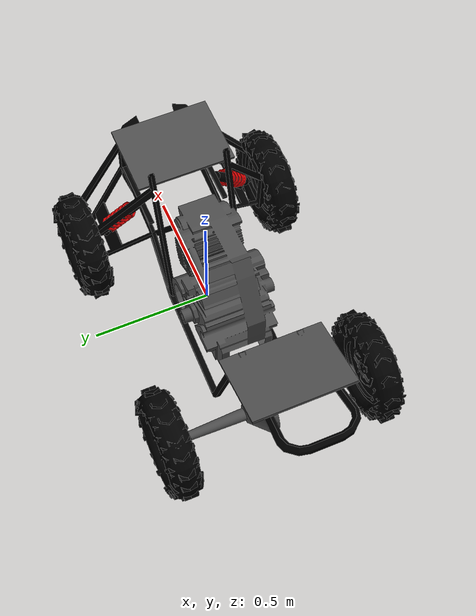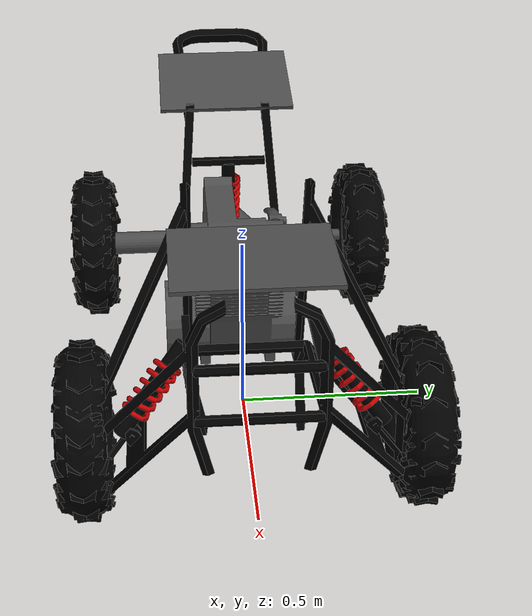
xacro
<?xml version="1.0"?>
<robot name="kymco_maxxer90" xmlns:xacro="http://ros.org/wiki/xacro">

    <xacro:include filename="$(find kymco_maxxer90_description)/urdf/wheel.urdf.xacro"/>
    <xacro:include filename="$(find kymco_maxxer90_description)/urdf/front_wheel.urdf.xacro"/>

    <xacro:property name="PI" value="3.1415926535897931"/>
    <xacro:property name="distance_from_ground" value="0.35"/> <!-- TODO -->
    <xacro:property name="wheelbase" value="0.970"/>
    <xacro:property name="wheel_diameter" value="0.4572"/>
    <xacro:property name="wheel_width" value="0.15"/>
    <xacro:property name="track" value="0.835"/>

    <!-- Chassis -->
    <link name="base_link" />

    <link name="chassis_link">
        <inertial>
            <mass value="68"/>
            <origin xyz="-0.25 0 ${distance_from_ground}" rpy="0 0 0"/>
            <inertia  ixx="6.997767154121414" ixy="0" ixz="0" iyy="17.876069102859596" iyz="0" izz="18.49883625698101" />
        </inertial>
        <visual>
            <origin xyz="0 0 ${distance_from_ground}" rpy="0 0 0"/>
            <geometry>
                <mesh filename="package://kymco_maxxer90_description/meshes/chassis.stl" scale="1.0 1.0 1.0"/>
            </geometry>
            <material name="black">
                <color rgba="0 0 0 1"/>
            </material>
        </visual>
        <collision>
            <origin xyz="0 0 ${distance_from_ground}" rpy="0 0 0"/>
            <geometry>
                <mesh filename="package://kymco_maxxer90_description/meshes/chassis.stl" scale="1.0 1.0 1.0"/>
            </geometry>
        </collision>
    </link>

    <joint name="chassis_joint" type="fixed">
        <origin xyz="0 0 0" rpy="0 0 0" />
        <parent link="base_link" />"
        <child link="chassis_link" />"
    </joint>

    <gazebo reference="chassis_link">
        <material>Gazebo/Black</material>
    </gazebo>"

    <!-- Steering wheel -->
    <link name="steering_wheel_link">
        <inertial>
            <mass value="5"/>
            <origin xyz="0 0 0"/>
            <inertia ixx="0.01" ixy="0" ixz="0" iyy="0.01" iyz="0" izz="0.01"/>
        </inertial>
    </link>

    <joint name="steering_wheel_joint" type="revolute">
        <origin xyz="-0.3 0 0.8" rpy="0 0 0" />
        <parent link="base_link" />
        <child link="steering_wheel_link" />
        <axis xyz="0 0 1" />
        <limit lower="${-PI*25/180}" upper="${PI*25/180}" effort="100000" velocity="0.95"/>
        <dynamics damping="10" friction="0.3" />
    </joint>

    <transmission name="steering_wheel_joint_trans">
        <type>transmission_interface/SimpleTransmission</type>
        <joint name="steering_wheel_joint">
            <hardwareInterface>hardware_interface/PositionJointInterface</hardwareInterface>
        </joint>
        <actuator name="steering_wheel_actuator">
            <mechanicalReduction>1</mechanicalReduction>
        </actuator>
    </transmission>

    <!-- Engine -->
    <link name="engine_link">
        <visual>
            <origin xyz="0 0 0" rpy="0 0 0"/>
            <geometry>
                <mesh filename="package://kymco_maxxer90_description/meshes/engine.stl" scale="1.3 1.3 1.3"/>
            </geometry>
            <material name="silver">
                <color rgba="0.3 0.3 0.3 1"/>
            </material>
        </visual>
        <collision>
            <origin xyz="0 0 0" rpy="0 0 0"/>
            <geometry>
                <mesh filename="package://kymco_maxxer90_description/meshes/engine.stl" scale="1.3 1.3 1.3"/>
            </geometry>
        </collision>
    </link>

    <joint name="engine_joint" type="fixed">
        <origin xyz="-0.08 0 ${distance_from_ground+0.05}" rpy="0 0 0"/>
        <parent link="base_link" />
        <child link="engine_link" />
    </joint>

    <gazebo reference="engine_link">
        <material>Gazebo/Grey</material>
    </gazebo>"

    <!-- Wheels -->
    <xacro:kymco_maxxer90_front_wheel wheel_prefix="front_right">
        <origin xyz="0.33 ${track/2} ${distance_from_ground/2}" rpy="0 0 ${PI}"/>
    </xacro:kymco_maxxer90_front_wheel>

    <xacro:kymco_maxxer90_front_wheel wheel_prefix="front_left">
        <origin xyz="0.33 ${-track/2} ${distance_from_ground/2}" rpy="0 0 0"/>
    </xacro:kymco_maxxer90_front_wheel>

    <xacro:kymco_maxxer90_wheel wheel_prefix="rear_right">
        <origin xyz="0 ${track/2} 0" rpy="0 0 ${PI}"/>
    </xacro:kymco_maxxer90_wheel>

    <xacro:kymco_maxxer90_wheel wheel_prefix="rear_left">
        <origin xyz="0 ${-track/2} 0" rpy="0 0 0"/>
    </xacro:kymco_maxxer90_wheel>

    <link name="rear_suspension_link" >
        <inertial>
            <mass value="10"/>
            <origin xyz="0 0 0"/>
            <inertia ixx="0.005" ixy="0" ixz="0" iyy="0.005" iyz="0" izz="0.005"/>
        </inertial>
    </link>

    <joint name="rear_suspension_joint" type="prismatic">
        <origin xyz="${0.33-wheelbase} 0 ${distance_from_ground/2}" rpy="0 0 0" />
        <parent link="base_link"/>
        <child link="rear_suspension_link"/>
        <axis xyz="0 0 -1" />
        <limit lower="-0.1" upper="0.1" effort="500" velocity="10"/>
    </joint>

    <gazebo reference="rear_suspension_joint">
        <provideFeedback>true</provideFeedback>
        <implicitSpringDamper>true</implicitSpringDamper>
        <springStiffness>30000</springStiffness>
        <springReference>0</springReference>
    </gazebo>

    <transmission name="rear_suspension_trans" type="SimpleTransmission">
        <type>transmission_interface/SimpleTransmission</type>
        <actuator name="rear_suspension_actuator">
            <mechanicalReduction>1</mechanicalReduction>
        </actuator>
        <joint name="rear_suspension_joint">
            <hardwareInterface>hardware_interface/EffortJointInterface</hardwareInterface>
        </joint>
    </transmission>

    <link name="rear_axle_link">
        <visual>
            <origin xyz="0 0.05 0" rpy="0 0 0"/>
            <geometry>
                <mesh filename="package://kymco_maxxer90_description/meshes/differential.stl" scale="1.6 1.6 1.6"/>
            </geometry>
            <material name="silver"/>
        </visual>
        <collision>
            <origin xyz="0 0.05 0" rpy="0 0 0"/>
            <geometry>
                <mesh filename="package://kymco_maxxer90_description/meshes/differential.stl" scale="1.6 1.6 1.6"/>
            </geometry>
        </collision>
    </link>

    <joint name="rear_axle_joint" type="fixed">
        <origin xyz="0 0 0" rpy="0 0 0"/>
        <parent link="rear_suspension_link" />
        <child link="rear_axle_link" />
    </joint>

    <gazebo reference="rear_axle_link">
        <material>Gazebo/Grey</material>
    </gazebo>

    <link name="RWD">
        <inertial>
            <mass value="10"/>
            <origin xyz="0 0 0"/>
            <inertia ixx="0.005" ixy="0" ixz="0" iyy="0.005" iyz="0" izz="0.005"/>
        </inertial>
    </link>

    <joint name="RWD_joint" type="continuous">
        <origin xyz="0 0 0" rpy="0 0 0"/>
        <parent link="rear_suspension_link" />
        <child link="RWD" />
        <axis xyz="0 1 0" />
    </joint>

    <transmission name="non_differential_trans" type="SimpleTransmission">
        <type>transmission_interface/SimpleTransmission</type>
        <actuator name="non_differential_motor">
            <mechanicalReduction>1</mechanicalReduction>
        </actuator>
        <joint name="RWD_joint">
            <hardwareInterface>hardware_interface/VelocityJointInterface</hardwareInterface>
        </joint>
    </transmission>

    <link name="front_plate_link">
        <visual>
            <origin xyz="0 0 0" rpy="0 0 0"/>
            <geometry>
                <box size="0.3 0.4 0.01"/>
            </geometry>
            <material name="silver"/>
        </visual>
        <collision>
            <origin xyz="0 0 0" rpy="0 0 0"/>
            <geometry>
                <box size="0.3 0.4 0.01"/>
            </geometry>
        </collision>
    </link>

    <joint name="front_plate_joint" type="fixed">
        <origin xyz="0.33 0 0.65" rpy="0 0 0"/>
        <parent link="base_link" />
        <child link="front_plate_link" />
    </joint>

    <gazebo reference="front_plate_link">
        <material>Gazebo/Grey</material>
    </gazebo>"

    <link name="rear_plate_link">
        <visual>
            <origin xyz="0 0 0" rpy="0 0 0"/>
            <geometry>
                <box size="0.3 0.4 0.01"/>
            </geometry>
            <material name="silver"/>
        </visual>
        <collision>
            <origin xyz="0 0 0" rpy="0 0 0"/>
            <geometry>
                <box size="0.3 0.4 0.01"/>
            </geometry>
        </collision>
    </link>

    <joint name="rear_plate_joint" type="fixed">
        <origin xyz="-0.75 0 0.67" rpy="0 ${PI/13} 0"/>
        <parent link="base_link" />
        <child link="rear_plate_link" />
    </joint>

    <link name="spray_valve_link"/>
    <joint name="spray_valve_joint" type="fixed">
        <origin xyz="-0.7 0.2 0.9" rpy="0 0 1.57079632679"/>
        <parent link="base_link" />
        <child link="spray_valve_link" />
    </joint>

    <gazebo reference="rear_plate_link">
        <material>Gazebo/Grey</material>
    </gazebo>"

    <link name="rear_trans_chassis_link">
        <visual>
            <origin xyz="0 0 0" rpy="0 0 0"/>
            <geometry>
                <box size="0.02 0.22 0.02"/>
            </geometry>
            <material name="black"/>
        </visual>
        <collision>
            <origin xyz="0 0 0" rpy="0 0 0"/>
            <geometry>
                <box size="0.02 0.22 0.02"/>
            </geometry>
        </collision>
    </link>

    <joint name="rear_trans_chassis_joint" type="fixed">
        <origin xyz="-0.57 0 0.48" rpy="0 0 0"/>
        <parent link="base_link" />
        <child link="rear_trans_chassis_link" />
    </joint>

    <gazebo reference="rear_trans_chassis_link">
        <material>Gazebo/Black</material>
    </gazebo>"

    <link name="rear_trans_link">
        <visual>
            <origin xyz="0 0 0" rpy="0 0 0"/>
            <geometry>
                <cylinder radius="0.02" length="0.28"/>
            </geometry>
            <material name="black"/>
        </visual>
        <collision>
            <origin xyz="0 0 0" rpy="0 0 0"/>
            <geometry>
                <cylinder radius="0.02" length="0.28"/>
            </geometry>
        </collision>
    </link>

    <joint name="rear_trans_joint" type="fixed">
        <origin xyz="-0.6 0 0.34" rpy="0 ${PI/16} 0"/>
        <parent link="base_link" />
        <child link="rear_trans_link" />
    </joint>

    <gazebo reference="rear_trans_link">
        <material>Gazebo/Black</material>
    </gazebo>"

    <link name="rear_trans_spring_link">
        <visual>
            <origin xyz="0 0 0" rpy="0 0 0"/>
            <geometry>
                <mesh filename="package://kymco_maxxer90_description/meshes/spring.stl" scale="1.0 1.0 1.0"/>
            </geometry>
            <material name="red">
                <color rgba="0.8 0 0 1"/>
            </material>
        </visual>
        <collision>
            <origin xyz="0 0 0" rpy="0 0 0"/>
            <geometry>
                <mesh filename="package://kymco_maxxer90_description/meshes/spring.stl" scale="1.0 1.0 1.0"/>
            </geometry>
        </collision>
    </link>

    <gazebo reference="rear_trans_spring_link">
        <material>Gazebo/Red</material>
    </gazebo>"

    <joint name="rear_trans_spring_joint" type="fixed">
        <origin xyz="-0.6 0 0.34" rpy="0 ${PI/16} 0"/>
        <parent link="base_link" />
        <child link="rear_trans_spring_link" />
    </joint>

    <link name="front_right_trans_chassis_link">
        <visual>
            <origin xyz="0 0 0" rpy="0 0 0"/>
            <geometry>
                <box size="0.3 0.02 0.01"/>
            </geometry>
            <material name="black"/>
        </visual>
        <collision>
            <origin xyz="0 0 0" rpy="0 0 0"/>
            <geometry>
                <box size="0.3 0.02 0.01"/>
            </geometry>
        </collision>
    </link>

    <joint name="front_right_trans_chassis_joint" type="fixed">
        <origin xyz="0.33 0.16 0.4" rpy="0 0 0"/>
        <parent link="base_link" />
        <child link="front_right_trans_chassis_link" />
    </joint>

    <gazebo reference="front_right_trans_chassis_link">
        <material>Gazebo/Black</material>
    </gazebo>"

    <link name="front_right_trans_link">
        <visual>
            <origin xyz="0 0 0" rpy="0 0 0"/>
            <geometry>
                <cylinder radius="0.02" length="0.28"/>
            </geometry>
            <material name="black"/>
        </visual>
        <collision>
            <origin xyz="0 0 0" rpy="0 0 0"/>
            <geometry>
                <cylinder radius="0.02" length="0.28"/>
            </geometry>
        </collision>
    </link>

    <joint name="front_right_trans_joint" type="fixed">
        <origin xyz="0.33 0.25 0.29" rpy="${PI/5} ${-PI/10} 0"/>
        <parent link="base_link" />
        <child link="front_right_trans_link" />
    </joint>

    <gazebo reference="front_right_trans_link">
        <material>Gazebo/Black</material>
    </gazebo>"

    <link name="front_right_trans_spring_link">
        <visual>
            <origin xyz="0 0 0" rpy="0 0 0"/>
            <geometry>
                <mesh filename="package://kymco_maxxer90_description/meshes/spring.stl" scale="1.0 1.0 1.0"/>
            </geometry>
            <material name="red">
                <color rgba="0.8 0 0 1"/>
            </material>
        </visual>
        <collision>
            <origin xyz="0 0 0" rpy="0 0 0"/>
            <geometry>
                <mesh filename="package://kymco_maxxer90_description/meshes/spring.stl" scale="1.0 1.0 1.0"/>
            </geometry>
        </collision>
    </link>

    <joint name="front_right_trans_spring_joint" type="fixed">
        <origin xyz="0.33 0.25 0.29" rpy="${PI/5} ${-PI/10} 0"/>
        <parent link="base_link" />
        <child link="front_right_trans_spring_link" />
    </joint>

    <gazebo reference="front_right_trans_spring_link">
        <material>Gazebo/Red</material>
    </gazebo>"

    <link name="front_left_trans_chassis_link">
        <visual>
            <origin xyz="0 0 0" rpy="0 0 0"/>
            <geometry>
                <box size="0.3 0.02 0.01"/>
            </geometry>
            <material name="black"/>
        </visual>
        <collision>
            <origin xyz="0 0 0" rpy="0 0 0"/>
            <geometry>
                <box size="0.3 0.02 0.01"/>
            </geometry>
        </collision>
    </link>

    <joint name="front_left_trans_chassis_joint" type="fixed">
        <origin xyz="0.33 -0.16 0.4" rpy="0 0 0"/>
        <parent link="base_link" />
        <child link="front_left_trans_chassis_link" />
    </joint>

    <gazebo reference="front_left_trans_chassis_link">
        <material>Gazebo/Black</material>
    </gazebo>"

    <link name="front_left_trans_link">
        <visual>
            <origin xyz="0 0 0" rpy="0 0 0"/>
            <geometry>
                <cylinder radius="0.02" length="0.28"/>
            </geometry>
            <material name="black"/>
        </visual>
        <collision>
            <origin xyz="0 0 0" rpy="0 0 0"/>
            <geometry>
                <cylinder radius="0.02" length="0.28"/>
            </geometry>
        </collision>
    </link>

    <joint name="front_left_trans_joint" type="fixed">
        <origin xyz="0.33 -0.25 0.29" rpy="${-PI/5} ${-PI/10} 0"/>
        <parent link="base_link" />
        <child link="front_left_trans_link" />
    </joint>

    <gazebo reference="front_left_trans_link">
        <material>Gazebo/Black</material>
    </gazebo>"

    <link name="front_left_trans_spring_link">
        <visual>
            <origin xyz="0 0 0" rpy="0 0 0"/>
            <geometry>
                <mesh filename="package://kymco_maxxer90_description/meshes/spring.stl" scale="1.0 1.0 1.0"/>
            </geometry>
            <material name="red">
                <color rgba="0.8 0 0 1"/>
            </material>
        </visual>
        <collision>
            <origin xyz="0 0 0" rpy="0 0 0"/>
            <geometry>
                <mesh filename="package://kymco_maxxer90_description/meshes/spring.stl" scale="1.0 1.0 1.0"/>
            </geometry>
        </collision>
    </link>

    <joint name="front_left_trans_spring_joint" type="fixed">
        <origin xyz="0.33 -0.25 0.29" rpy="${-PI/5} ${-PI/10} 0"/>
        <parent link="base_link" />
        <child link="front_left_trans_spring_link" />
    </joint>

    <gazebo reference="front_left_trans_spring_link">
        <material>Gazebo/Red</material>
    </gazebo>"

    <!-- Sensors -->
    <link name="gps_link"/>

    <joint name="gps_joint" type="fixed">
        <origin xyz="0 0 0" rpy="0 0 0"/>
        <parent link="base_link" />
        <child link="gps_link" />
    </joint>

    <link name="imu_link"/>

    <joint name="imu_joint" type="fixed">
        <origin xyz="0 0 0" rpy="0 0 0"/>
        <parent link="base_link"/>
        <child link="imu_link"/>
    </joint>

    <link name="camera_link"/>

    <joint name="camera_joint" type="fixed">
        <origin xyz="0.5 0.0 0.63" rpy="0 -0.15 0"/>
        <parent link="base_link"/>
        <child link="camera_link"/>
    </joint>

    <link name="webcamera_link"/>

    <joint name="webcamera_joint" type="fixed">
        <origin xyz="0.4 0.15 0.69" rpy="0 0 0.2"/>
        <parent link="base_link"/>
        <child link="webcamera_link"/>
    </joint>

    <link name="rgbd_optical_camera_frame"/>

    <joint name="rgbd_optical_camera_joint" type="fixed">
        <origin xyz="0 0 0" rpy="0 0 0"/>
        <parent link="camera_link"/>
        <child link="rgbd_optical_camera_frame"/>
    </joint>

    <link name="rgbd_depth_camera_frame"/>

    <joint name="rgbd_depth_camera_joint" type="fixed">
        <origin xyz="0.0 0 0" rpy="${-PI/2} 0 ${-PI/2}"/>
        <parent link="rgbd_optical_camera_frame"/>
        <child link="rgbd_depth_camera_frame"/>
    </joint>

    <gazebo reference="rgbd_optical_camera_frame">
        <sensor type="depth" name="camera">
            <always_on>true</always_on>
            <update_rate>30.0</update_rate>
            <camera>
                <horizontal_fov>${110.0*PI/180.0}</horizontal_fov>
                <image>
                    <format>R8G8B8</format>
                    <width>720</width>
                    <height>540</height>
                </image>
                <clip>
                    <near>0.2</near>
                    <far>10.0</far>
                </clip>
            </camera>
            <plugin name="camera_plugin" filename="libgazebo_ros_openni_kinect.so">
                <baseline>0.2</baseline>
                <alwaysOn>true</alwaysOn>
                <imageTopicName>/camera/color/image_raw</imageTopicName>
                <cameraInfoTopicName>/camera/color/camera_info</cameraInfoTopicName>
                <depthImageTopicName>/camera/depth/image_raw</depthImageTopicName>
                <depthImageCameraInfoTopicName>/camera/depth/camera_info</depthImageCameraInfoTopicName>
                <pointCloudTopicName>/camera/depth/points</pointCloudTopicName>
                <frameName>rgbd_depth_camera_frame</frameName>
                <pointCloudCutoff>0.2</pointCloudCutoff>
                <pointCloudCutoffMax>10.0</pointCloudCutoffMax>
                <distortionK1>-0.16</distortionK1>
                <distortionK2>0.01</distortionK2>
                <distortionK3>-0.02</distortionK3>
                <distortionT1>0.004</distortionT1>
                <distortionT2>-0.01</distortionT2>
                <CxPrime>0</CxPrime>
                <Cx>0</Cx>
                <Cy>0</Cy>
                <focalLength>0</focalLength>
                <hackBaseline>0</hackBaseline>
            </plugin>
        </sensor>
    </gazebo>

    <gazebo reference="webcamera_link">
    <sensor type="camera" name="webcam">
      <update_rate>30.0</update_rate>
      <camera name="usb_cam">
        <horizontal_fov>1.3962634</horizontal_fov>
        <image>
          <width>640</width>
          <height>480</height>
          <format>R8G8B8</format>
        </image>
        <clip>
          <near>0.02</near>
          <far>100</far>
        </clip>
        <noise>
          <type>gaussian</type>
          <mean>0.0</mean>
          <stddev>0.007</stddev>
        </noise>
      </camera>
      <plugin name="camera_controller" filename="libgazebo_ros_camera.so">
        <alwaysOn>true</alwaysOn>
        <updateRate>0.0</updateRate>
        <cameraName>usb_cam</cameraName>
        <imageTopicName>image_raw</imageTopicName>
        <cameraInfoTopicName>camera_info</cameraInfoTopicName>
        <frameName>webcamera_link</frameName>
        <hackBaseline>0.07</hackBaseline>
        <distortionK1>0.0</distortionK1>
        <distortionK2>0.0</distortionK2>
        <distortionK3>0.00</distortionK3>
        <distortionT1>0.00</distortionT1>
        <distortionT2>0.000</distortionT2>
      </plugin>
    </sensor>
  </gazebo>

    <!-- Gazebo plugins -->
    <gazebo>
        <plugin name="gps_sensor" filename="libhector_gazebo_ros_gps.so">
            <robotNamespace>/</robotNamespace>
            <updateRate>40</updateRate>
            <bodyName>base_link</bodyName>
            <frameId>gps_link</frameId>
            <topicName>navsat/fix</topicName>
            <velocityTopicName>navsat/vel</velocityTopicName>
            <referenceLatitude>37.9949</referenceLatitude>
            <referenceLongitude>23.819173</referenceLongitude>
            <referenceHeading>0</referenceHeading>
            <referenceAltitude>0</referenceAltitude>
            <drift>0.0001 0.0001 0.0001</drift>
            <gaussianNoise>0.1 0.1 0.1</gaussianNoise>
        </plugin>
        <plugin name="imu_sensor" filename="libhector_gazebo_ros_imu.so">
            <updateRate>50.0</updateRate>
            <bodyName>base_link</bodyName>
            <frameId>base_link</frameId>
            <topicName>imu/data</topicName>
            <accelDrift>0.00001 0.00001 0.00001</accelDrift>
            <accelGaussianNoise>0.001 0.001 0.001</accelGaussianNoise>
            <rateDrift>0.001 0.001 0.001</rateDrift>
            <rateGaussianNoise>0.01 0.01 0.01</rateGaussianNoise>
        </plugin>
        <plugin name="ros_control" filename="libgazebo_ros_control.so">
            <robotNamespace></robotNamespace>
            <robotParam>robot_description</robotParam>
            <controlPeriod>0.001</controlPeriod>
            <robotSimType>gazebo_ros_control/DefaultRobotHWSim</robotSimType>
            <legacyModeNS>true</legacyModeNS>               <!-- Probably needed to work at ROS Kinetic, ignore otherwise -->
        </plugin>

        <!-- Groundtruth perfect odometry plugin for evaluation purposes -->
        <plugin name="p3d_base_controller" filename="libgazebo_ros_p3d.so">
            <alwaysOn>true</alwaysOn>
            <updateRate>50.0</updateRate>
            <bodyName>base_link</bodyName>
            <topicName>odom_perfect</topicName>
            <gaussianNoise>0.01</gaussianNoise>
            <frameName>world</frameName>
        </plugin>
    </gazebo>

</robot>

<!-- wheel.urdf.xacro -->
<robot name="kymco_maxxer90_wheel" xmlns:xacro="http://ros.org/wiki/xacro">

	<xacro:macro name="kymco_maxxer90_wheel" params="wheel_prefix *joint_pose">
		<link name="${wheel_prefix}_wheel_link">
			<inertial>
				<mass value="10.0" />
                <origin xyz="0 0 0" />
                <inertia  ixx="0.1494" ixy="0" ixz="0" iyy="0.2613" iyz="0" izz="0.1494" />
			</inertial>
			<visual>
                <origin xyz="0 0 0" rpy="0 0 0" />
				<geometry>
                    <mesh filename="package://kymco_maxxer90_description/meshes/wheel.stl" scale="1.0 1.0 1.0"/>
				</geometry>
				<material name="black"/>
			</visual>
			<collision>
                <origin xyz="0 0 0" rpy="${PI/2} 0 0" />
				<geometry>
                    <cylinder radius="0.2286" length="0.15" />
				</geometry>
			</collision>
		</link>

		<joint name="${wheel_prefix}_wheel" type="continuous">
			<parent link="RWD"/>
			<child link="${wheel_prefix}_wheel_link"/>
			<xacro:insert_block name="joint_pose"/>
			<axis xyz="0 1 0" rpy="0 0 0" />
            <dynamics damping="1" friction="1" />
		</joint>

        <gazebo reference="${wheel_prefix}_wheel_link">
            <material>Gazebo/Black</material>
        </gazebo>"

        <transmission name="${wheel_prefix}_wheel_trans" type="SimpleTransmission">
            <type>transmission_interface/SimpleTransmission</type>
            <actuator name="${wheel_prefix}_wheel_motor">
                <mechanicalReduction>1</mechanicalReduction>
            </actuator>
            <joint name="${wheel_prefix}_wheel">
                <hardwareInterface>hardware_interface/VelocityJointInterface</hardwareInterface>
            </joint>
        </transmission>

	</xacro:macro>
</robot>

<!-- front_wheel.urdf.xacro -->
<robot name="kymco_maxxer90_front_wheel" xmlns:xacro="http://ros.org/wiki/xacro">

	<xacro:macro name="kymco_maxxer90_front_wheel" params="wheel_prefix *joint_pose">
		<link name="${wheel_prefix}_wheel_link">
            <inertial>
                <mass value="8.0"/>
                <origin xyz="0 0 0"/>
                <inertia  ixx="0.11952" ixy="0" ixz="0" iyy="0.20903" iyz="0" izz="0.11952" />
            </inertial>
			<visual>
				<origin xyz="0 0 0" rpy="0 0 0" />
				<geometry>
                    <mesh filename="package://kymco_maxxer90_description/meshes/wheel.stl" scale="1.0 1.0 1.0"/>
				</geometry>
				<material name="black"/>
			</visual>
			<collision>
                <origin xyz="0 0 0" rpy="${PI/2} 0 0" />
				<geometry>
                    <cylinder radius="0.2286" length="0.15" />
				</geometry>
			</collision>
		</link>

        <link name="${wheel_prefix}_wheel_steering_link" >
            <inertial>
                <mass value="1"/>
                <origin xyz="0 0 0"/>
                <inertia ixx="0.0001" ixy="0" ixz="0" iyy="0.0001" iyz="0" izz="0.0001"/>
            </inertial>
        </link>

        <link name="${wheel_prefix}_suspension_link" >
            <inertial>
                <mass value="1"/>
                <origin xyz="0 0 0"/>
                <inertia ixx="0.005" ixy="0" ixz="0" iyy="0.005" iyz="0" izz="0.005"/>
            </inertial>
        </link>

        <joint name="${wheel_prefix}_suspension_joint" type="prismatic">
			<xacro:insert_block name="joint_pose"/>
            <parent link="base_link"/>
            <child link="${wheel_prefix}_suspension_link"/>
            <axis xyz="0 0 -1" />
            <limit lower="-0.1" upper="0.1" effort="500" velocity="10"/>
        </joint>

        <gazebo reference="${wheel_prefix}_suspension_joint">
            <provideFeedback>true</provideFeedback>
            <implicitSpringDamper>true</implicitSpringDamper>
            <springStiffness>30000</springStiffness>
            <springReference>0</springReference>
        </gazebo>

        <transmission name="${wheel_prefix}_suspension_trans" type="SimpleTransmission">
            <type>transmission_interface/SimpleTransmission</type>
            <actuator name="${wheel_prefix}_suspension_actuator">
                <mechanicalReduction>1</mechanicalReduction>
            </actuator>
            <joint name="${wheel_prefix}_suspension_joint">
                <hardwareInterface>hardware_interface/EffortJointInterface</hardwareInterface>
            </joint>
        </transmission>

        <joint name="${wheel_prefix}_steering_wheel_joint" type="revolute">
            <origin xyz="0 0 0" rpy="0 0 0" />
            <parent link="${wheel_prefix}_suspension_link"/>
			<child link="${wheel_prefix}_wheel_steering_link"/>
            <axis xyz="0 0 1" />
            <mimic joint="steering_wheel_joint" multiplier="1" offset="0" />
            <limit lower="${-PI*25/180}" upper="${PI*25/180}" effort="100000" velocity="0.95"/>
            <dynamics damping="0" friction="1.0" />
        </joint>

		<joint name="${wheel_prefix}_wheel" type="continuous">
            <origin xyz="0 0 0" rpy="0 0 0"/>
            <parent link="${wheel_prefix}_wheel_steering_link" />
			<child link="${wheel_prefix}_wheel_link"/>
			<axis xyz="0 1 0" rpy="0 0 0" />
            <dynamics damping="0.1" friction="0.1" />
        </joint>

        <gazebo reference="${wheel_prefix}_wheel_link">
            <material>Gazebo/Black</material>
        </gazebo>"

        <transmission name="${wheel_prefix}_wheel_trans" type="SimpleTransmission">
            <type>transmission_interface/SimpleTransmission</type>
            <actuator name="${wheel_prefix}_wheel_actuator">
                <mechanicalReduction>0</mechanicalReduction>
            </actuator>
            <joint name="${wheel_prefix}_wheel">
                <hardwareInterface>hardware_interface/EffortJointInterface</hardwareInterface>
            </joint>
        </transmission>

        <gazebo>
            <plugin name="${wheel_prefix}_mimic_joint_plugin" filename="libroboticsgroup_gazebo_mimic_joint_plugin.so">
                <joint>steering_wheel_joint</joint>
                <mimicJoint>${wheel_prefix}_steering_wheel_joint</mimicJoint>
                <hasPID/>
                <multiplier>1.0</multiplier>
                <offset>0</offset>
                <sensitiveness>0.0</sensitiveness>
                <maxEffort>1000000.0</maxEffort>
            </plugin>
        </gazebo>

	</xacro:macro>
</robot>
